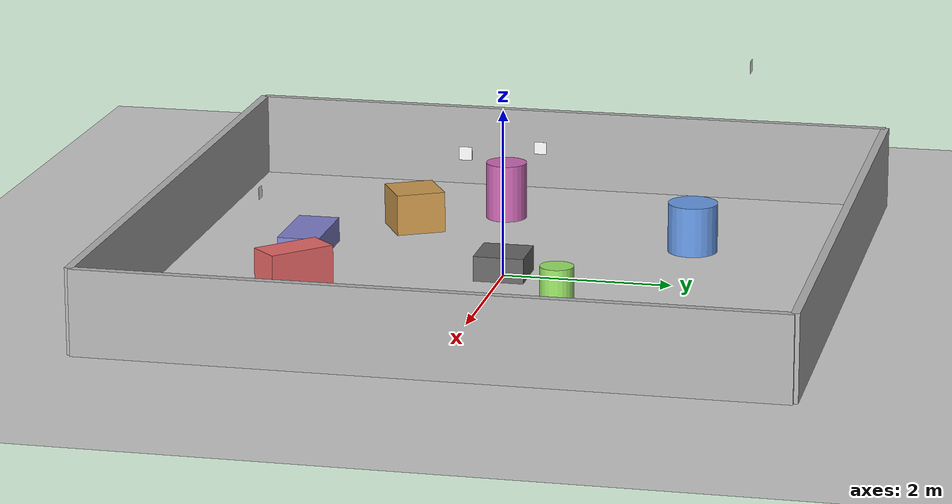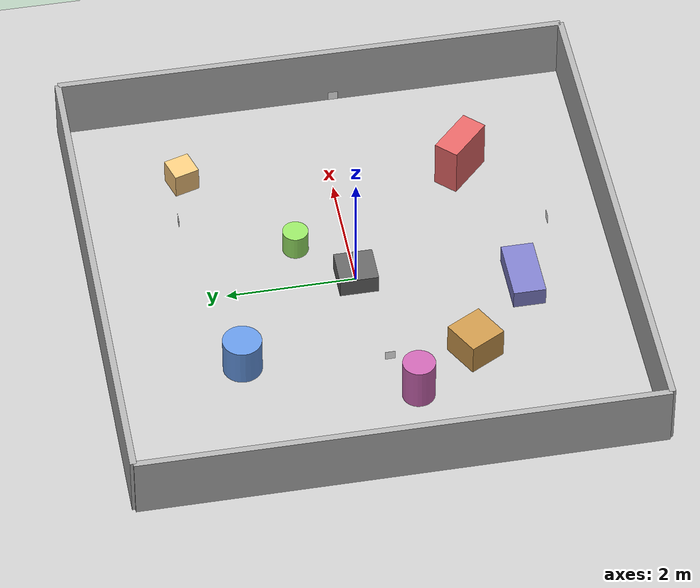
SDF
<?xml version="1.0" ?>
<sdf version="1.8">
  <world name="default">

    <!-- Physics -->
    <physics name="1ms" type="ignored">
      <max_step_size>0.001</max_step_size>
      <real_time_factor>1.0</real_time_factor>
    </physics>

    <!-- Plugins -->
    <plugin filename="ignition-gazebo-physics-system" name="ignition::gazebo::systems::Physics"></plugin>
    <plugin filename="ignition-gazebo-user-commands-system" name="ignition::gazebo::systems::UserCommands"></plugin>
    <plugin filename="ignition-gazebo-scene-broadcaster-system" name="ignition::gazebo::systems::SceneBroadcaster"></plugin>

    <!-- Lighting -->
    <light type="directional" name="sun">
      <cast_shadows>true</cast_shadows>
      <pose>0 0 10 0 0 0</pose>
      <diffuse>0.8 0.8 0.8 1</diffuse>
      <specular>0.2 0.2 0.2 1</specular>
      <attenuation>
        <range>1000</range>
        <constant>0.9</constant>
        <linear>0.01</linear>
        <quadratic>0.001</quadratic>
      </attenuation>
      <direction>-0.5 0.1 -0.9</direction>
    </light>

    <!-- Ground Plane -->
    <model name="ground_plane">
      <static>true</static>
      <link name="link">
        <collision name="collision">
          <geometry>
            <plane>
              <normal>0 0 1</normal>
              <size>100 100</size>
            </plane>
          </geometry>
        </collision>
        <visual name="visual">
          <geometry>
            <plane>
              <normal>0 0 1</normal>
              <size>100 100</size>
            </plane>
          </geometry>
          <material>
            <ambient>0.8 0.8 0.8 1</ambient>
            <diffuse>0.8 0.8 0.8 1</diffuse>
            <specular>0.8 0.8 0.8 1</specular>
          </material>
        </visual>
      </link>
    </model>

    <!-- Iiwa Pedestal (Platform for robot arm) -->
    <model name="iiwa_pedestal">
      <pose>0 0 0.15 0 0 0</pose>
      <static>true</static>
      <link name="link">
        <collision name="collision">
          <geometry>
            <box>
              <size>0.6 0.6 0.3</size>
            </box>
          </geometry>
        </collision>
        <visual name="visual">
          <geometry>
            <box>
              <size>0.6 0.6 0.3</size>
            </box>
          </geometry>
          <material>
            <ambient>0.3 0.3 0.3 1</ambient>
            <diffuse>0.4 0.4 0.4 1</diffuse>
          </material>
        </visual>
      </link>
    </model>

    <!-- ArUco Marker ID 5 - Settore Nord -->
    <include>
      <uri>model://aruco_tag_5</uri>
      <name>aruco_marker_5</name>
      <pose>-0.71 2.79 2.5 0 1.5708 -1.5708</pose>
    </include>

    <!-- ArUco Marker ID 10 - Settore Est -->
    <include>
      <uri>model://aruco_tag_10</uri>
      <name>aruco_marker_10</name>
      <pose>2 0 2. 0 1.5708 0</pose>
    </include>

    <!-- ArUco Marker ID 15 - Settore Sud -->
    <include>
      <uri>model://aruco_tag_15</uri>
      <name>aruco_marker_15</name>
      <pose>0 -2.95 0.84 0 1.5708 1.5708</pose>
    </include>

    <!-- ArUco Marker ID 20 - Settore Ovest -->
    <include>
      <uri>model://aruco_tag_20</uri>
      <name>aruco_marker_20</name>
      <pose>-2.47 -0.07 0.91 0 1.5708 3.14159</pose>
    </include>

    <!-- Wall 1 (North) -->
    <model name="wall_1">
      <pose>0 4 0.5 0 0 0</pose>
      <static>true</static>
      <link name="link">
        <collision name="collision">
          <geometry>
            <box>
              <size>8 0.1 1</size>
            </box>
          </geometry>
        </collision>
        <visual name="visual">
          <geometry>
            <box>
              <size>8 0.1 1</size>
            </box>
          </geometry>
          <material>
            <ambient>0.5 0.5 0.5 1</ambient>
            <diffuse>0.7 0.7 0.7 1</diffuse>
          </material>
        </visual>
      </link>
    </model>

    <!-- Wall 2 (South) -->
    <model name="wall_2">
      <pose>0 -4 0.5 0 0 0</pose>
      <static>true</static>
      <link name="link">
        <collision name="collision">
          <geometry>
            <box>
              <size>8 0.1 1</size>
            </box>
          </geometry>
        </collision>
        <visual name="visual">
          <geometry>
            <box>
              <size>8 0.1 1</size>
            </box>
          </geometry>
          <material>
            <ambient>0.5 0.5 0.5 1</ambient>
            <diffuse>0.7 0.7 0.7 1</diffuse>
          </material>
        </visual>
      </link>
    </model>

    <!-- Wall 3 (East) -->
    <model name="wall_3">
      <pose>4 0 0.5 0 0 1.5707</pose>
      <static>true</static>
      <link name="link">
        <collision name="collision">
          <geometry>
            <box>
              <size>8 0.1 1</size>
            </box>
          </geometry>
        </collision>
        <visual name="visual">
          <geometry>
            <box>
              <size>8 0.1 1</size>
            </box>
          </geometry>
          <material>
            <ambient>0.5 0.5 0.5 1</ambient>
            <diffuse>0.7 0.7 0.7 1</diffuse>
          </material>
        </visual>
      </link>
    </model>

    <!-- Wall 4 (West) -->
    <model name="wall_4">
      <pose>-4 0 0.5 0 0 1.5707</pose>
      <static>true</static>
      <link name="link">
        <collision name="collision">
          <geometry>
            <box>
              <size>8 0.1 1</size>
            </box>
          </geometry>
        </collision>
        <visual name="visual">
          <geometry>
            <box>
              <size>8 0.1 1</size>
            </box>
          </geometry>
          <material>
            <ambient>0.5 0.5 0.5 1</ambient>
            <diffuse>0.7 0.7 0.7 1</diffuse>
          </material>
        </visual>
      </link>
    </model>

    <!-- Obstacle 1: Large Box (Southwest quadrant) -->
    <model name="obstacle_box_1">
      <pose>-1.8 -1.5 0.25 0 0 0.5</pose>
      <static>true</static>
      <link name="link">
        <collision name="collision">
          <geometry>
            <box>
              <size>0.6 0.6 0.5</size>
            </box>
          </geometry>
        </collision>
        <visual name="visual">
          <geometry>
            <box>
              <size>0.6 0.6 0.5</size>
            </box>
          </geometry>
          <material>
            <ambient>0.6 0.4 0.2 1</ambient>
            <diffuse>0.8 0.6 0.3 1</diffuse>
          </material>
        </visual>
      </link>
    </model>

    <!-- Obstacle 2: Cylinder (Northwest quadrant) -->
    <model name="obstacle_cylinder_1">
      <pose>-1.5 2 0.3 0 0 0</pose>
      <static>true</static>
      <link name="link">
        <collision name="collision">
          <geometry>
            <cylinder>
              <radius>0.3</radius>
              <length>0.6</length>
            </cylinder>
          </geometry>
        </collision>
        <visual name="visual">
          <geometry>
            <cylinder>
              <radius>0.3</radius>
              <length>0.6</length>
            </cylinder>
          </geometry>
          <material>
            <ambient>0.3 0.5 0.7 1</ambient>
            <diffuse>0.4 0.6 0.9 1</diffuse>
          </material>
        </visual>
      </link>
    </model>

    <!-- Obstacle 3: Tall Rectangular Box (Southeast quadrant) -->
    <model name="obstacle_box_2">
      <pose>2 -2 0.4 0 0 0.8</pose>
      <static>true</static>
      <link name="link">
        <collision name="collision">
          <geometry>
            <box>
              <size>0.4 0.8 0.8</size>
            </box>
          </geometry>
        </collision>
        <visual name="visual">
          <geometry>
            <box>
              <size>0.4 0.8 0.8</size>
            </box>
          </geometry>
          <material>
            <ambient>0.7 0.3 0.3 1</ambient>
            <diffuse>0.9 0.4 0.4 1</diffuse>
          </material>
        </visual>
      </link>
    </model>

    <!-- Obstacle 4: Small Cylinder (Near center, slightly northeast) -->
    <model name="obstacle_cylinder_2">
      <pose>0.8 0.8 0.2 0 0 0</pose>
      <static>true</static>
      <link name="link">
        <collision name="collision">
          <geometry>
            <cylinder>
              <radius>0.2</radius>
              <length>0.4</length>
            </cylinder>
          </geometry>
        </collision>
        <visual name="visual">
          <geometry>
            <cylinder>
              <radius>0.2</radius>
              <length>0.4</length>
            </cylinder>
          </geometry>
          <material>
            <ambient>0.5 0.7 0.3 1</ambient>
            <diffuse>0.6 0.9 0.4 1</diffuse>
          </material>
        </visual>
      </link>
    </model>

    <!-- Obstacle 5: Wide Flat Box (South side) -->
    <model name="obstacle_box_3">
      <pose>-0.5 -2.5 0.15 0 0 0</pose>
      <static>true</static>
      <link name="link">
        <collision name="collision">
          <geometry>
            <box>
              <size>1.0 0.5 0.3</size>
            </box>
          </geometry>
        </collision>
        <visual name="visual">
          <geometry>
            <box>
              <size>1.0 0.5 0.3</size>
            </box>
          </geometry>
          <material>
            <ambient>0.4 0.4 0.6 1</ambient>
            <diffuse>0.5 0.5 0.8 1</diffuse>
          </material>
        </visual>
      </link>
    </model>

    <!-- Obstacle 6: Small Box (Northeast, near wall) -->
    <model name="obstacle_box_4">
      <pose>2.5 2.3 0.2 0 0 0.3</pose>
      <static>true</static>
      <link name="link">
        <collision name="collision">
          <geometry>
            <box>
              <size>0.4 0.4 0.4</size>
            </box>
          </geometry>
        </collision>
        <visual name="visual">
          <geometry>
            <box>
              <size>0.4 0.4 0.4</size>
            </box>
          </geometry>
          <material>
            <ambient>0.8 0.6 0.4 1</ambient>
            <diffuse>1.0 0.8 0.5 1</diffuse>
          </material>
        </visual>
      </link>
    </model>

    <!-- Obstacle 7: Medium Cylinder (West side) -->
    <model name="obstacle_cylinder_3">
      <pose>-2.5 -0.5 0.35 0 0 0</pose>
      <static>true</static>
      <link name="link">
        <collision name="collision">
          <geometry>
            <cylinder>
              <radius>0.25</radius>
              <length>0.7</length>
            </cylinder>
          </geometry>
        </collision>
        <visual name="visual">
          <geometry>
            <cylinder>
              <radius>0.25</radius>
              <length>0.7</length>
            </cylinder>
          </geometry>
          <material>
            <ambient>0.6 0.3 0.5 1</ambient>
            <diffuse>0.8 0.4 0.7 1</diffuse>
          </material>
        </visual>
      </link>
    </model>

  </world>
</sdf>

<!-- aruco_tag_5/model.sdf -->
<sdf version="1.6">
  <model name="aruco_tag_5">
    <static>true</static>
    <link name="link">
      <visual name="visual">
        <geometry>
          <box>
            <size>0.15 0.15 0.001</size>
          </box>
        </geometry>
        <material>
          <diffuse>1 1 1 1</diffuse>
          <specular>0.4 0.4 0.4 1</specular>
          <pbr>
            <metal>
              <albedo_map>model://aruco_tag_5/materials/textures/marker_5.png</albedo_map>
            </metal>
          </pbr>
        </material>
      </visual>
      <collision name="collision">
        <geometry>
          <box>
            <size>0.15 0.15 0.001</size>
          </box>
        </geometry>
      </collision>
    </link>
  </model>
</sdf>

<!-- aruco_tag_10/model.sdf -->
<sdf version="1.6">
  <model name="aruco_tag_10">
    <static>true</static>
    <link name="link">
      <visual name="visual">
        <geometry>
          <box>
            <size>0.15 0.15 0.001</size>
          </box>
        </geometry>
        <material>
          <diffuse>1 1 1 1</diffuse>
          <specular>0.4 0.4 0.4 1</specular>
          <pbr>
            <metal>
              <albedo_map>model://aruco_tag_10/materials/textures/marker_10.png</albedo_map>
            </metal>
          </pbr>
        </material>
      </visual>
      <collision name="collision">
        <geometry>
          <box>
            <size>0.15 0.15 0.001</size>
          </box>
        </geometry>
      </collision>
    </link>
  </model>
</sdf>

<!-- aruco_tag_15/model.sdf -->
<sdf version="1.6">
  <model name="aruco_tag_15">
    <static>true</static>
    <link name="link">
      <visual name="visual">
        <geometry>
          <box>
            <size>0.15 0.15 0.001</size>
          </box>
        </geometry>
        <material>
          <diffuse>1 1 1 1</diffuse>
          <specular>0.4 0.4 0.4 1</specular>
          <pbr>
            <metal>
              <albedo_map>model://aruco_tag_15/materials/textures/marker_15.png</albedo_map>
            </metal>
          </pbr>
        </material>
      </visual>
      <collision name="collision">
        <geometry>
          <box>
            <size>0.15 0.15 0.001</size>
          </box>
        </geometry>
      </collision>
    </link>
  </model>
</sdf>

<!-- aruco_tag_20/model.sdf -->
<sdf version="1.6">
  <model name="aruco_tag_20">
    <static>true</static>
    <link name="link">
      <visual name="visual">
        <geometry>
          <box>
            <size>0.15 0.15 0.001</size>
          </box>
        </geometry>
        <material>
          <diffuse>1 1 1 1</diffuse>
          <specular>0.4 0.4 0.4 1</specular>
          <pbr>
            <metal>
              <albedo_map>model://aruco_tag_20/materials/textures/marker_20.png</albedo_map>
            </metal>
          </pbr>
        </material>
      </visual>
      <collision name="collision">
        <geometry>
          <box>
            <size>0.15 0.15 0.001</size>
          </box>
        </geometry>
      </collision>
    </link>
  </model>
</sdf>
